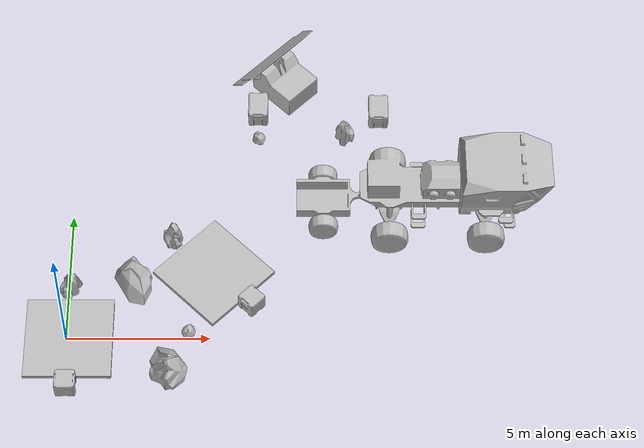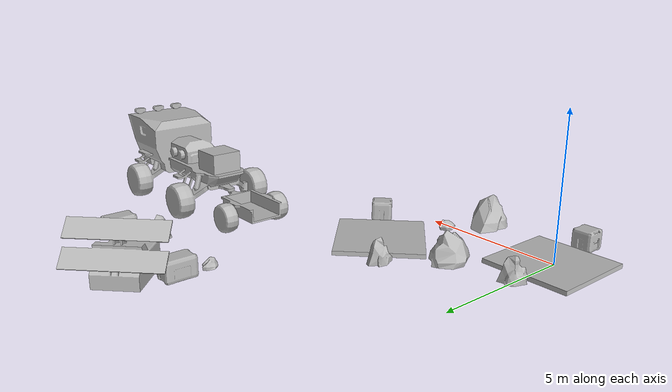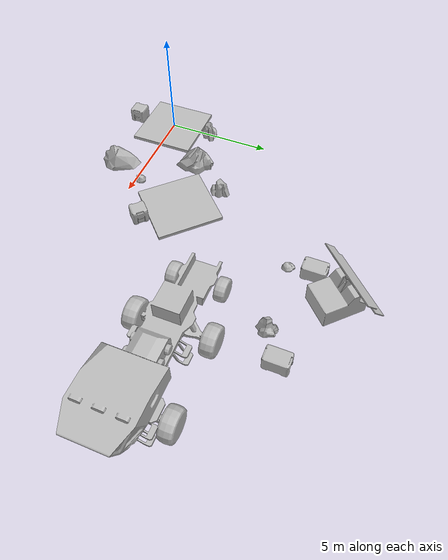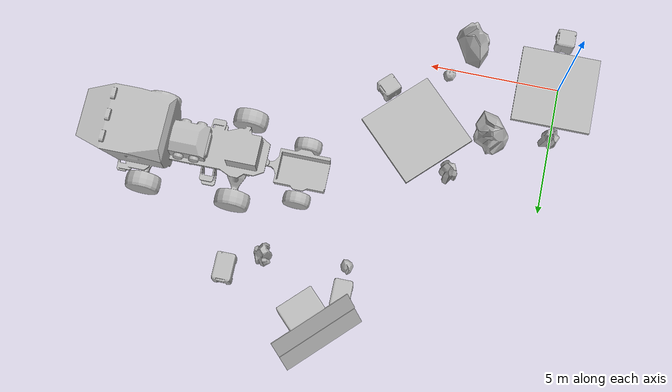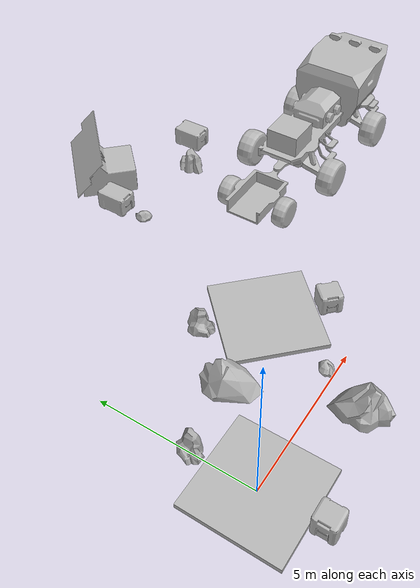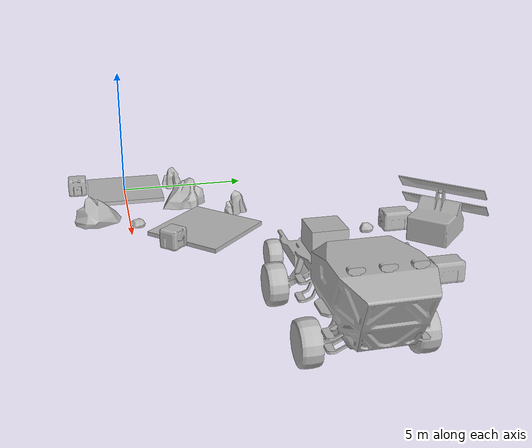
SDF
<sdf version="1.6">
 <world name="SRC_finals">
  <include>
   <name>walkway_1</name>
   <pose>0.09
      0
      -0.052151
      0
      0
      3.141592653589793</pose>
   <uri>model://walkway_finish_opposite</uri>
  </include>
  <include>
   <name>bling_1</name>
   <pose>0.08999999999999976
      -1.924
      0
      0
      0
      3.141592653589793</pose>
   <uri>model://mars_crate</uri>
  </include>
  <include>
   <name>bling_2</name>
   <pose>0.0900000000000003
      2.024
      0
      0
      0
      -2.4492935982947064e-16</pose>
   <uri>model://mars_rock_2</uri>
  </include>
  <include>
   <name>bling_3</name>
   <pose>3.6925514593052027
      -1.315978101833501
      0
      0
      0
      -2.356194490192345</pose>
   <uri>model://mars_rock_3</uri>
  </include>
  <include>
   <name>bling_4</name>
   <pose>4.275207447002918
      0.25662737952538023
      0
      0
      0
      -2.3561944901923453</pose>
   <uri>model://mars_rock_1</uri>
  </include>
  <include>
   <name>bling_5</name>
   <pose>2.136916540694798
      2.3949182858335005
      0
      0
      0
      0.7853981633974481</pose>
   <uri>model://mars_rock_3</uri>
  </include>
  <include>
   <name>walkway_4</name>
   <pose>5.069995469056598
      2.694731561056596
      -0.052151
      0
      0
      -2.3561944901923453</pose>
   <uri>model://walkway_finish_opposite</uri>
  </include>
  <include>
   <name>bling_6</name>
   <pose>6.430468916059515
      1.334258114053678
      0
      0
      0
      -2.3561944901923453</pose>
   <uri>model://mars_crate</uri>
  </include>
  <include>
   <name>bling_7</name>
   <pose>3.638811343935026
      4.1259156861781685
      0
      0
      0
      0.785398163397448</pose>
   <uri>model://mars_rock_2</uri>
  </include>
  <include>
   <pose>13.025551809732567
        5.389213822333624
        0
        0
        0
        1.5707963267948961</pose>
   <uri>model://mars_explorer</uri>
  </include>
  <include>
   <name>bling_8</name>
   <pose>6.5882663847833305
      9.597259247282864
      0
      0
      0
      1.5707963267948961</pose>
   <uri>model://mars_crate_long</uri>
  </include>
  <include>
   <name>bling_9</name>
   <pose>6.601551809732568
      8.437213822333625
      0
      0
      0
      1.5707963267948961</pose>
   <uri>model://mars_rock_1</uri>
  </include>
  <include>
   <pose>7.914113172079968
        10.442487286514524
        0.2
        0
        0
        0.7853981633974481</pose>
   <uri>model://solar_array</uri>
  </include>
  <include>
   <name>bling_10</name>
   <pose>9.73420602685414
      8.622394431740352
      0
      0
      0
      -2.3561944901923453</pose>
   <uri>model://mars_rock_2</uri>
  </include>
  <include>
   <name>bling_11</name>
   <pose>11.023968795738405
      9.487893131912685
      0
      0
      0
      -1.570796326794897</pose>
   <uri>model://mars_crate_long</uri>
  </include>
 </world>
</sdf>
